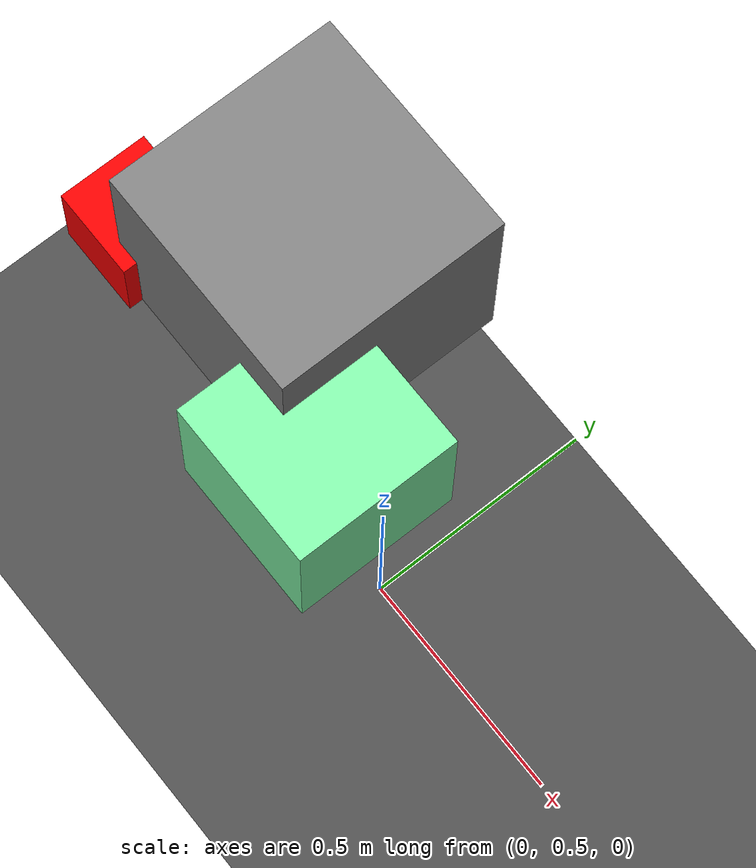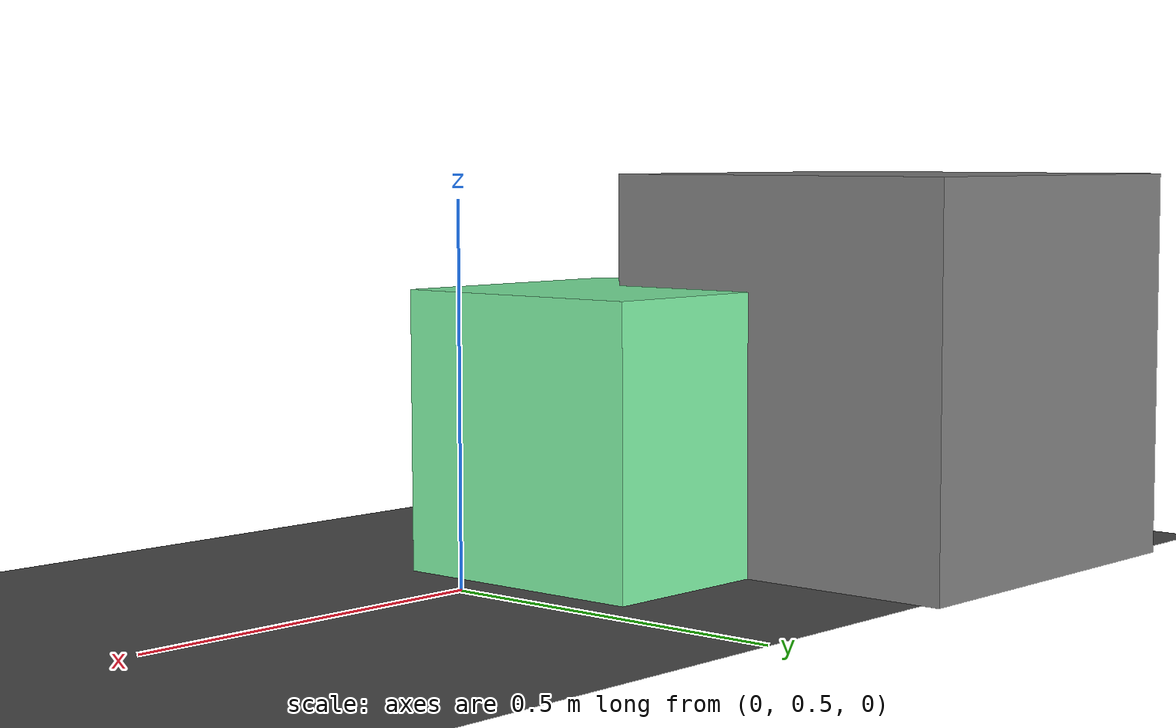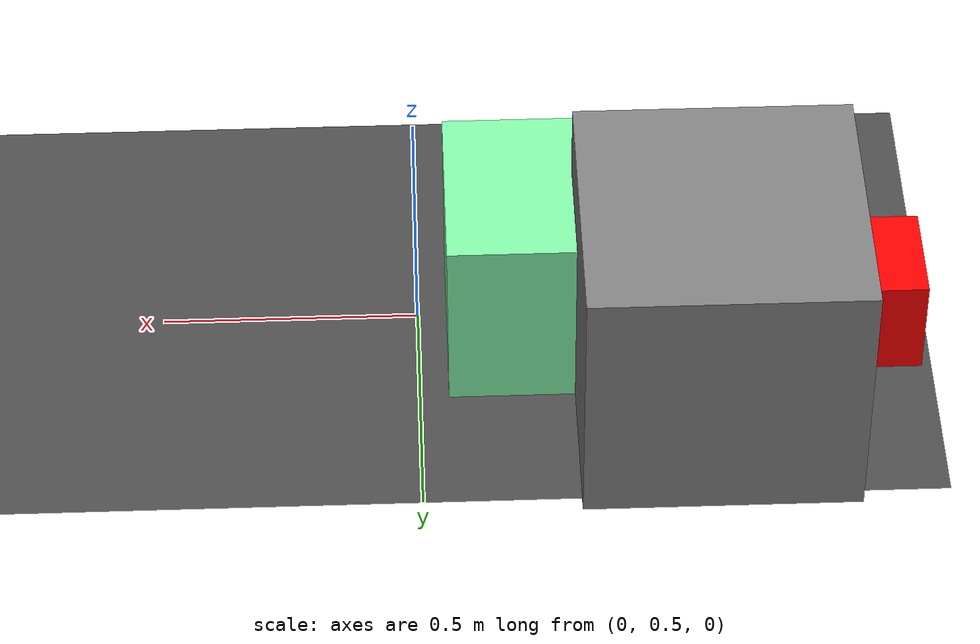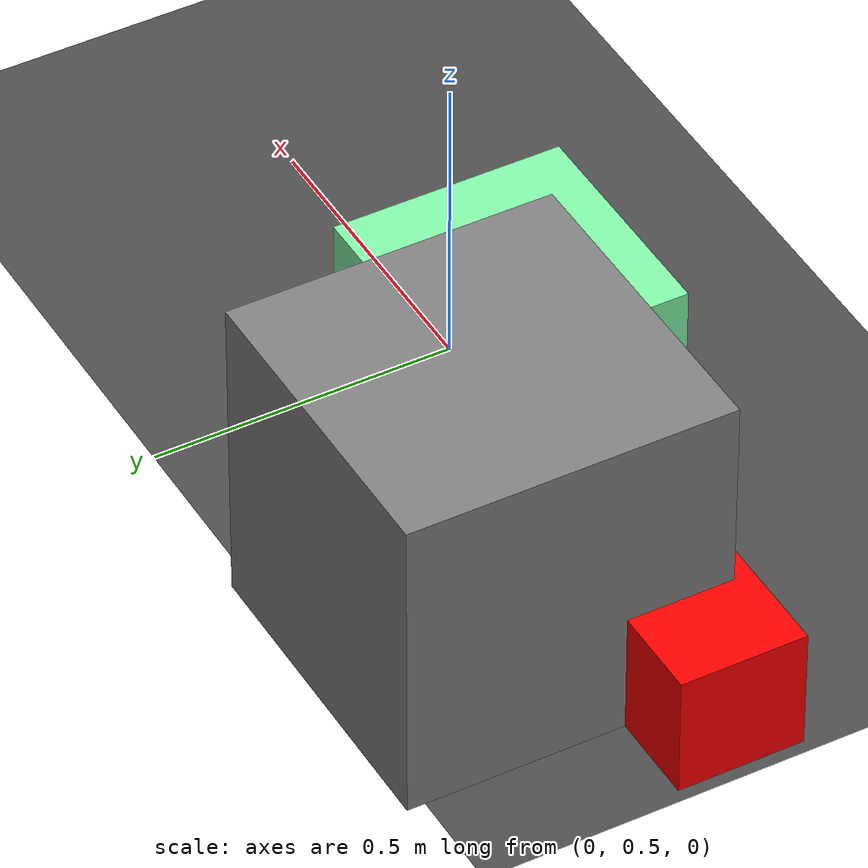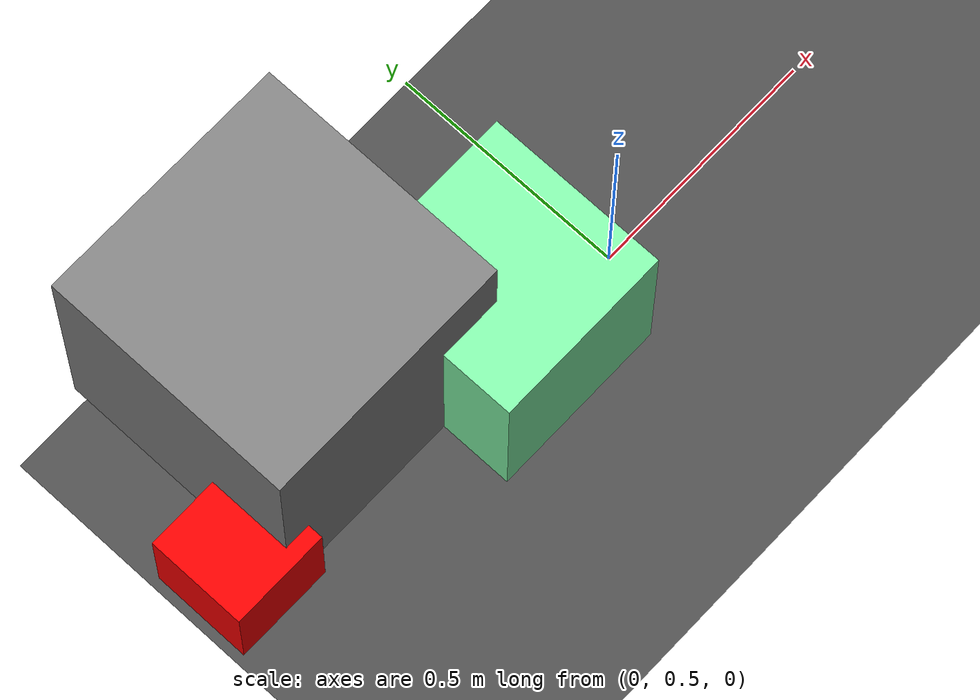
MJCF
<mujoco>
   <asset>
      <texture name="builtin_checker" builtin="checker" type="2d" rgb1="1 1 0" rgb2="0 0 1" width="200" height="200"/>
      <texture name="builtin_gradient" builtin="gradient" rgb1="0 .9 .3" rgb2="1 1 1" width="200" height="200"/>
      <texture name="builtin_flat" builtin="flat" rgb1="1 0 0" rgb2="1 0 0"  width="200" height="200"/>

      <material name="checker_mat" reflectance="0.9" texrepeat="3 3" texture="builtin_checker" texuniform="false" />
      <material name="gradient_mat" reflectance="1" texrepeat="1 1" texture="builtin_gradient" texuniform="true"/>
      <material name="flat_mat" reflectance="1" texrepeat="1 1" texture="builtin_flat" texuniform="true"/>
   </asset>

   <worldbody>
      <light diffuse=".9 .9 .9" pos="0 0 3" dir="0 0 -1"/>
     <geom type="plane" size="1 1 0.1" rgba="0.3 0.3 0.3 1"/>
<body pos="-0.5658997632665012 0.7649169108448541 0.2648308638174962">
<joint type="free"/>
 <geom type="box" size="0.2648308638174962 0.2648308638174962 0.2648308638174962" material="checker_mat" />
</body>
<body pos="-0.8778939289589813 0.5715825732054602 0.10337118447913823">
<joint type="free"/>
 <geom type="box" size="0.10337118447913823 0.10337118447913823 0.10337118447913823" material="flat_mat" />
</body>
<body pos="-0.24559131862203432 0.5369781613923484 0.18896495768554833">
<joint type="free"/>
 <geom type="box" size="0.18896495768554833 0.18896495768554833 0.18896495768554833" material="gradient_mat" />
</body>
<body pos="-0.44280954084700413 0.811713958614871 0.13336591311597956">
<joint type="free"/>
 <geom type="box" size="0.13336591311597956 0.13336591311597956 0.13336591311597956" material="checker_mat" />
</body><camera euler="60 0 180" fovy="60" name="camera_a" pos="0 -1.5 1"></camera>   </worldbody>
</mujoco>
